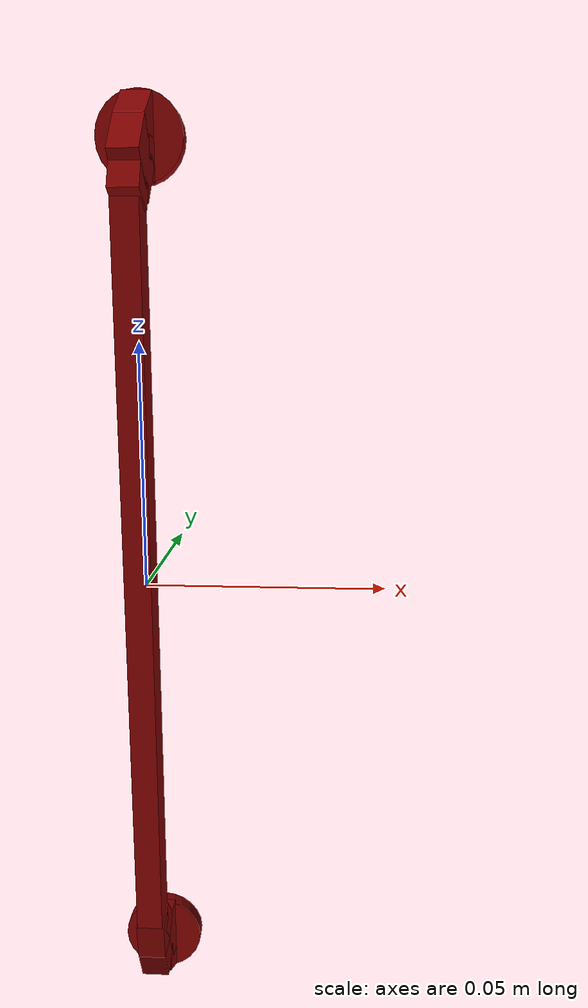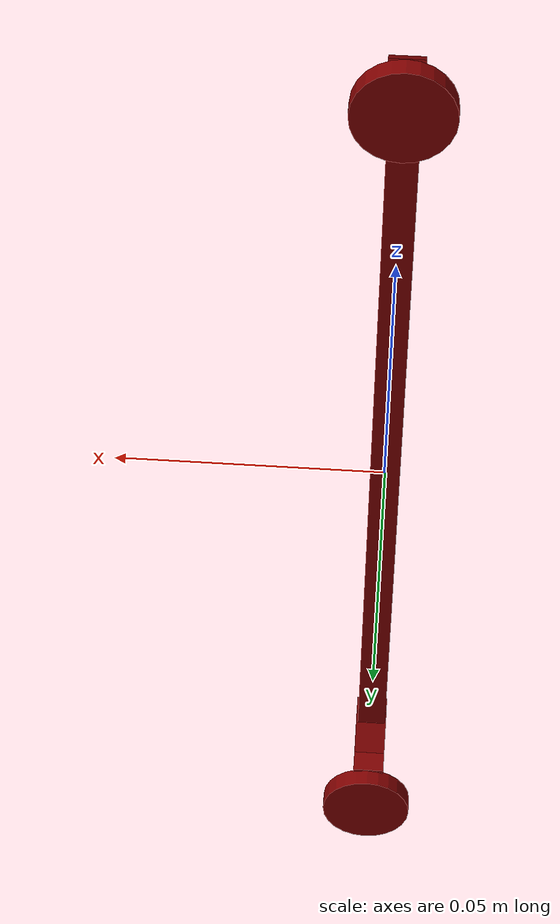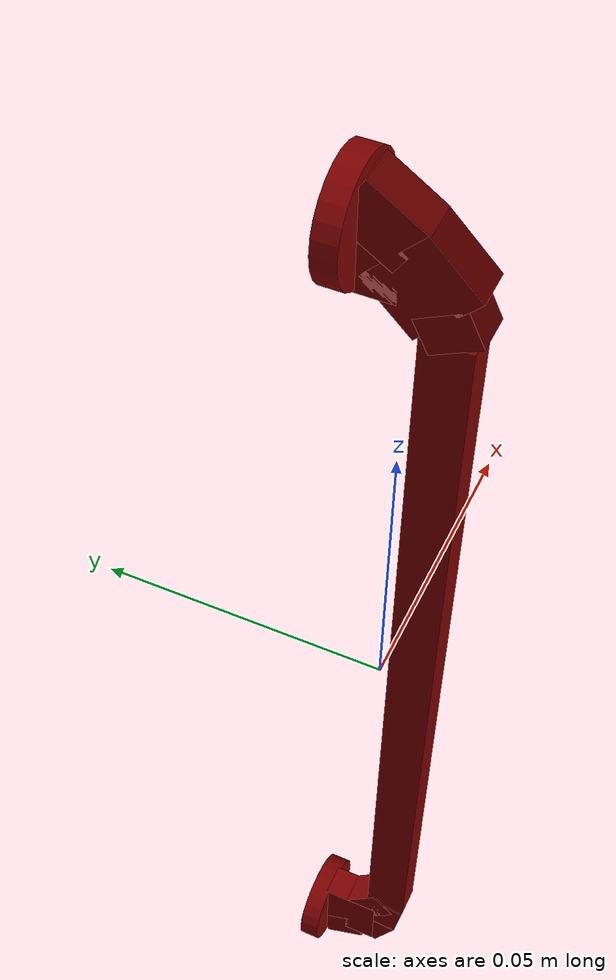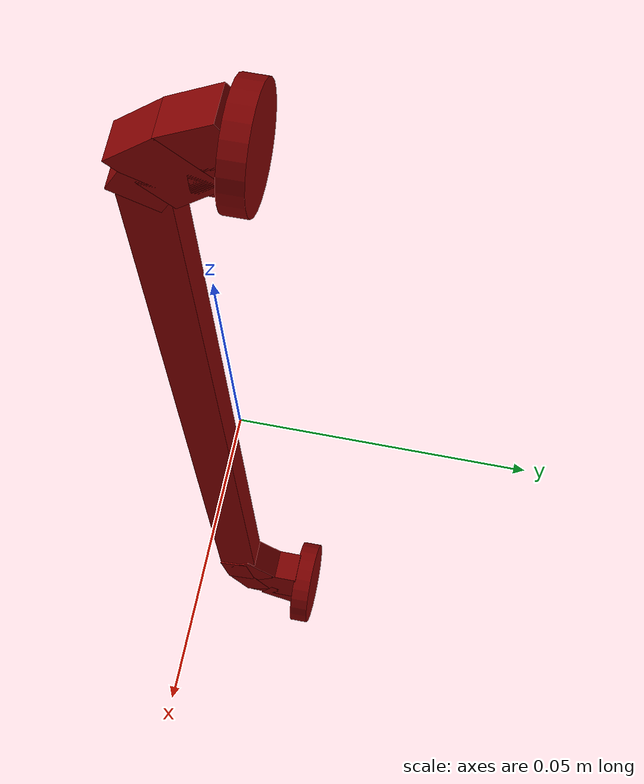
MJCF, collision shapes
<?xml version='1.0' encoding='UTF-8'?>
<mujoco model="model">
  <option timestep="0.002" gravity="0.0 0.0 -9.81"/>
  <compiler angle="radian"/>
  <asset>
    <mesh file="visuals/CabinetHandle015.obj" name="CabinetHandle015_vis"/>
    <texture file="visuals/T_BC001.png" name="tex" type="2d"/>
    <material name="mat" rgba="1 1 1 1.0" texture="tex" shininess="-1.0" specular="0.3103448502657381"/>
  </asset>
  <default>
    <default class="visual">
      <geom conaffinity="0" contype="0" group="1" type="mesh"/>
    </default>
    <default class="collision">
      <geom group="0" rgba="0.5 0 0 0.5" density="1.0" solref="0.004 1" solimp="0.998 0.998 0.001"/>
    </default>
    <default class="spawn">
      <geom group="0" rgba="1 1 1 0.5" contype="0" conaffinity="0"/>
      <site group="0" rgba="1 1 1 0.5"/>
    </default>
    <default class="region">
      <geom group="1" conaffinity="0" contype="0" rgba="0 1 0 0" mass="0"/>
    </default>
  </default>
  <worldbody>
    <body>
      <body name="object">
        <geom mesh="CabinetHandle015_vis" type="mesh" solimp="0.998 0.998 0.001" solref="0.001 1" friction="0.95 0.3 0.1" class="visual" material="mat"/>
        <geom type="cylinder" pos="0.0001194776632473804 0.007997053675353527 0.08864034712314606" size="0.00877227820456028 0.0018166240770369768" quat="0.5000000596046448 0.5 0.5 -0.4999999701976776" class="collision"/>
        <geom type="cylinder" pos="0.0001194910510093905 0.007997053675353527 -0.08863884210586548" size="0.00877227820456028 0.0018166240770369768" quat="0.5000000596046448 0.5 0.5 -0.4999999701976776" class="collision"/>
        <geom type="box" pos="-6.4200960103732996e-09 -0.00220870110206306 0.08357667177915573" size="0.006126752123236656 0.003036418231204152 0.005277896765619516" quat="0.2747322916984558 0.6515538096427917 0.6515535712242126 -0.27473217248916626" class="collision"/>
        <geom type="box" pos="-6.56252963082693e-09 0.0033838895615190268 0.09083087742328644" size="0.004889516159892082 0.003036418231204152 0.004009944852441549" quat="0.19968222081661224 -0.6783266663551331 0.678326427936554 0.19968277215957642" class="collision"/>
        <geom type="box" pos="-6.0292206782719404e-09 0.0035676443949341774 0.08420039713382721" size="0.003036417067050934 0.002880081534385681 0.004095359239727259" quat="1.0 0.0 0.0 0.0" class="collision"/>
        <geom type="box" pos="-5.5797780078137293e-05 -0.006091587711125612 -9.282679093303159e-05" size="0.002762017073109746 0.003779315622523427 0.07622762769460678" quat="1.0 0.0 0.0 0.0" class="collision"/>
        <geom type="box" pos="-7.218884601201125e-09 -0.006196361035108566 0.07816465944051743" size="0.002754163695499301 0.003036418231204152 0.004009945318102837" quat="0.36971670389175415 -0.6027516722679138 0.6027517914772034 0.36971643567085266" class="collision"/>
        <geom type="box" pos="6.8951977461040315e-09 0.0011967484606429935 -0.08567732572555542" size="0.006126752123236656 0.003036418231204152 0.005277896765619516" quat="0.5022982954978943 0.4976910650730133 0.4976862072944641 -0.5023031830787659" class="collision"/>
        <geom type="box" pos="7.594683992806495e-09 0.003207104280591011 -0.09213811904191971" size="0.002933198120445013 0.003036418231204152 0.004189207684248686" quat="0.6007931232452393 0.3728909492492676 0.3728909492492676 -0.6007930636405945" class="collision"/>
        <geom type="box" pos="5.507539757587665e-09 -0.002852807519957423 -0.07878603786230087" size="0.002933198120445013 0.003036418231204152 0.004189207684248686" quat="0.6551386117935181 0.26607027649879456 0.26607030630111694 -0.6551386117935181" class="collision"/>
        <geom type="box" pos="4.976444589743778e-09 -0.006358850747346878 -0.08002086728811264" size="0.002933198120445013 0.003036418231204152 0.004189207684248686" quat="0.7052523493766785 0.05117739737033844 0.05117756128311157 -0.7052523493766785" class="collision"/>
        <geom type="box" pos="5.891368282107123e-09 -0.004109691362828016 -0.08683449774980545" size="0.002933198120445013 0.003036418231204152 0.004189207684248686" quat="0.6880823969841003 0.16291871666908264 0.16291867196559906 -0.6880825757980347" class="collision"/>
        <geom class="region" name="reg_main" type="box" pos="2.3283064365386963e-10 0.0 0.0" size="0.009462673984467984 0.010764275513589383 0.09867568111419678"/>
      </body>
    </body>
  </worldbody>
  <actuator/>
</mujoco>
